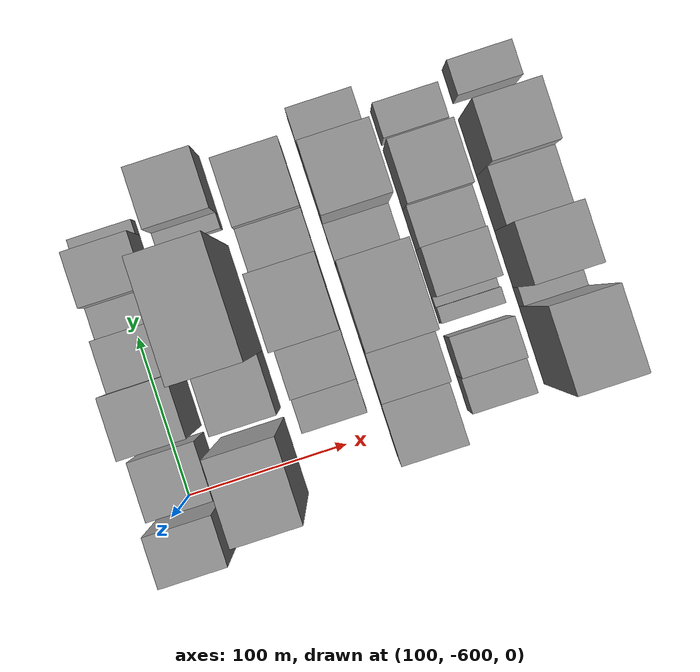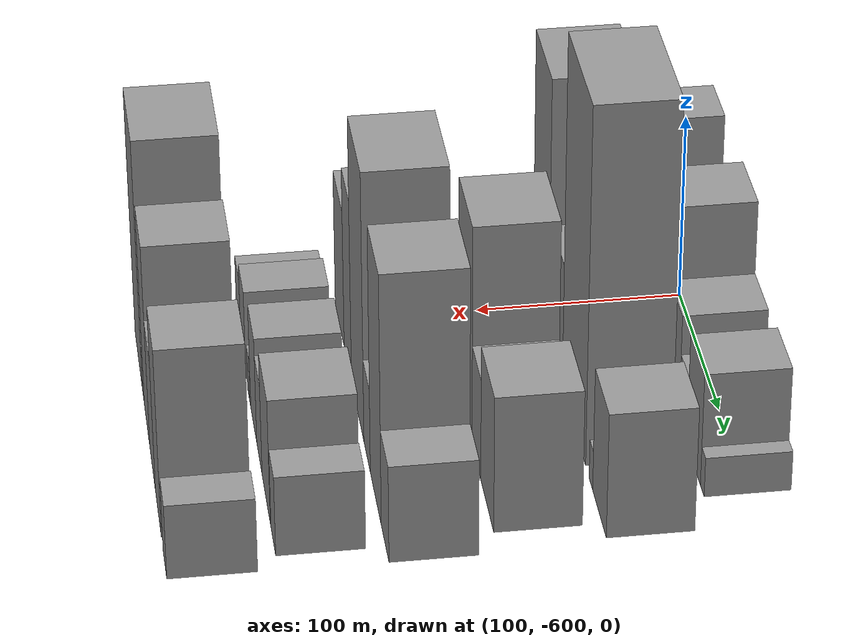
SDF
<sdf version="1.6">
 <world name="default">
  <model name="building_7">
   <static>1</static>
   <pose>100.0000 -620.6411 0 0.000000 0.000000 0.000000</pose>
   <link name="link">
    <pose>0 0 48.00 0 0 0</pose>
    <collision name="collision"><geometry><box><size>40.0000 29.7763 96.0000</size></box></geometry></collision>
    <visual name="visual">
     <cast_shadows>0</cast_shadows>
     <geometry><box><size>40.0000 29.7763 96.0000</size></box></geometry>
     <material>
      <script>
       <uri>model://grey_wall/materials/scripts</uri>
       <uri>model://grey_wall/materials/textures</uri>
       <name>vrc/grey_wall</name>
      </script>
     </material>
    </visual>
   </link>
  </model>
  <model name="building_8">
   <static>1</static>
   <pose>100.0000 -583.9597 0 0.000000 0.000000 0.000000</pose>
   <link name="link">
    <pose>0 0 33.00 0 0 0</pose>
    <collision name="collision"><geometry><box><size>40.0000 35.5866 66.0000</size></box></geometry></collision>
    <visual name="visual">
     <cast_shadows>0</cast_shadows>
     <geometry><box><size>40.0000 35.5866 66.0000</size></box></geometry>
     <material>
      <script>
       <uri>model://grey_wall/materials/scripts</uri>
       <uri>model://grey_wall/materials/textures</uri>
       <name>vrc/grey_wall</name>
      </script>
     </material>
    </visual>
   </link>
  </model>
  <model name="building_9">
   <static>1</static>
   <pose>100.0000 -543.9890 0 0.000000 0.000000 0.000000</pose>
   <link name="link">
    <pose>0 0 48.00 0 0 0</pose>
    <collision name="collision"><geometry><box><size>40.0000 36.3549 96.0000</size></box></geometry></collision>
    <visual name="visual">
     <cast_shadows>0</cast_shadows>
     <geometry><box><size>40.0000 36.3549 96.0000</size></box></geometry>
     <material>
      <script>
       <uri>model://grey_wall/materials/scripts</uri>
       <uri>model://grey_wall/materials/textures</uri>
       <name>vrc/grey_wall</name>
      </script>
     </material>
    </visual>
   </link>
  </model>
  <model name="building_10">
   <static>1</static>
   <pose>100.0000 -510.0783 0 0.000000 0.000000 0.000000</pose>
   <link name="link">
    <pose>0 0 28.50 0 0 0</pose>
    <collision name="collision"><geometry><box><size>40.0000 31.4664 57.0000</size></box></geometry></collision>
    <visual name="visual">
     <cast_shadows>0</cast_shadows>
     <geometry><box><size>40.0000 31.4664 57.0000</size></box></geometry>
     <material>
      <script>
       <uri>model://grey_wall/materials/scripts</uri>
       <uri>model://grey_wall/materials/textures</uri>
       <name>vrc/grey_wall</name>
      </script>
     </material>
    </visual>
   </link>
  </model>
  <model name="building_11">
   <static>1</static>
   <pose>100.0000 -484.4417 0 0.000000 0.000000 0.000000</pose>
   <link name="link">
    <pose>0 0 18.00 0 0 0</pose>
    <collision name="collision"><geometry><box><size>40.0000 19.8068 36.0000</size></box></geometry></collision>
    <visual name="visual">
     <cast_shadows>0</cast_shadows>
     <geometry><box><size>40.0000 19.8068 36.0000</size></box></geometry>
     <material>
      <script>
       <uri>model://grey_wall/materials/scripts</uri>
       <uri>model://grey_wall/materials/textures</uri>
       <name>vrc/grey_wall</name>
      </script>
     </material>
    </visual>
   </link>
  </model>
  <model name="building_12">
   <static>1</static>
   <pose>100.0000 -457.7605 0 0.000000 0.000000 0.000000</pose>
   <link name="link">
    <pose>0 0 30.00 0 0 0</pose>
    <collision name="collision"><geometry><box><size>40.0000 33.5557 60.0000</size></box></geometry></collision>
    <visual name="visual">
     <cast_shadows>0</cast_shadows>
     <geometry><box><size>40.0000 33.5557 60.0000</size></box></geometry>
     <material>
      <script>
       <uri>model://grey_wall/materials/scripts</uri>
       <uri>model://grey_wall/materials/textures</uri>
       <name>vrc/grey_wall</name>
      </script>
     </material>
    </visual>
   </link>
  </model>
  <model name="building_13">
   <static>1</static>
   <pose>100.0000 -436.4602 0 0.000000 0.000000 0.000000</pose>
   <link name="link">
    <pose>0 0 10.50 0 0 0</pose>
    <collision name="collision"><geometry><box><size>40.0000 9.0448 21.0000</size></box></geometry></collision>
    <visual name="visual">
     <cast_shadows>0</cast_shadows>
     <geometry><box><size>40.0000 9.0448 21.0000</size></box></geometry>
     <material>
      <script>
       <uri>model://grey_wall/materials/scripts</uri>
       <uri>model://grey_wall/materials/textures</uri>
       <name>vrc/grey_wall</name>
      </script>
     </material>
    </visual>
   </link>
  </model>
  <model name="building_52">
   <static>1</static>
   <pose>149.0000 -596.8694 0 0.000000 0.000000 0.000000</pose>
   <link name="link">
    <pose>0 0 70.50 0 0 0</pose>
    <collision name="collision"><geometry><box><size>40.0000 48.4864 141.0000</size></box></geometry></collision>
    <visual name="visual">
     <cast_shadows>0</cast_shadows>
     <geometry><box><size>40.0000 48.4864 141.0000</size></box></geometry>
     <material>
      <script>
       <uri>model://grey_wall/materials/scripts</uri>
       <uri>model://grey_wall/materials/textures</uri>
       <name>vrc/grey_wall</name>
      </script>
     </material>
    </visual>
   </link>
  </model>
  <model name="building_53">
   <static>1</static>
   <pose>149.0000 -548.5624 0 0.000000 0.000000 0.000000</pose>
   <link name="link">
    <pose>0 0 33.00 0 0 0</pose>
    <collision name="collision"><geometry><box><size>40.0000 36.1278 66.0000</size></box></geometry></collision>
    <visual name="visual">
     <cast_shadows>0</cast_shadows>
     <geometry><box><size>40.0000 36.1278 66.0000</size></box></geometry>
     <material>
      <script>
       <uri>model://grey_wall/materials/scripts</uri>
       <uri>model://grey_wall/materials/textures</uri>
       <name>vrc/grey_wall</name>
      </script>
     </material>
    </visual>
   </link>
  </model>
  <model name="building_54">
   <static>1</static>
   <pose>149.0000 -497.0256 0 0.000000 0.000000 0.000000</pose>
   <link name="link">
    <pose>0 0 94.50 0 0 0</pose>
    <collision name="collision"><geometry><box><size>40.0000 66.9458 189.0000</size></box></geometry></collision>
    <visual name="visual">
     <cast_shadows>0</cast_shadows>
     <geometry><box><size>40.0000 66.9458 189.0000</size></box></geometry>
     <material>
      <script>
       <uri>model://grey_wall/materials/scripts</uri>
       <uri>model://grey_wall/materials/textures</uri>
       <name>vrc/grey_wall</name>
      </script>
     </material>
    </visual>
   </link>
  </model>
  <model name="building_55">
   <static>1</static>
   <pose>149.0000 -448.6384 0 0.000000 0.000000 0.000000</pose>
   <link name="link">
    <pose>0 0 10.50 0 0 0</pose>
    <collision name="collision"><geometry><box><size>40.0000 9.8285 21.0000</size></box></geometry></collision>
    <visual name="visual">
     <cast_shadows>0</cast_shadows>
     <geometry><box><size>40.0000 9.8285 21.0000</size></box></geometry>
     <material>
      <script>
       <uri>model://grey_wall/materials/scripts</uri>
       <uri>model://grey_wall/materials/textures</uri>
       <name>vrc/grey_wall</name>
      </script>
     </material>
    </visual>
   </link>
  </model>
  <model name="building_56">
   <static>1</static>
   <pose>149.0000 -425.2524 0 0.000000 0.000000 0.000000</pose>
   <link name="link">
    <pose>0 0 33.00 0 0 0</pose>
    <collision name="collision"><geometry><box><size>40.0000 36.9436 66.0000</size></box></geometry></collision>
    <visual name="visual">
     <cast_shadows>0</cast_shadows>
     <geometry><box><size>40.0000 36.9436 66.0000</size></box></geometry>
     <material>
      <script>
       <uri>model://grey_wall/materials/scripts</uri>
       <uri>model://grey_wall/materials/textures</uri>
       <name>vrc/grey_wall</name>
      </script>
     </material>
    </visual>
   </link>
  </model>
  <model name="building_103">
   <static>1</static>
   <pose>198.0000 -572.4885 0 0.000000 0.000000 0.000000</pose>
   <link name="link">
    <pose>0 0 18.00 0 0 0</pose>
    <collision name="collision"><geometry><box><size>40.0000 21.3300 36.0000</size></box></geometry></collision>
    <visual name="visual">
     <cast_shadows>0</cast_shadows>
     <geometry><box><size>40.0000 21.3300 36.0000</size></box></geometry>
     <material>
      <script>
       <uri>model://grey_wall/materials/scripts</uri>
       <uri>model://grey_wall/materials/textures</uri>
       <name>vrc/grey_wall</name>
      </script>
     </material>
    </visual>
   </link>
  </model>
  <model name="building_104">
   <static>1</static>
   <pose>198.0000 -546.5260 0 0.000000 0.000000 0.000000</pose>
   <link name="link">
    <pose>0 0 25.50 0 0 0</pose>
    <collision name="collision"><geometry><box><size>40.0000 30.5950 51.0000</size></box></geometry></collision>
    <visual name="visual">
     <cast_shadows>0</cast_shadows>
     <geometry><box><size>40.0000 30.5950 51.0000</size></box></geometry>
     <material>
      <script>
       <uri>model://grey_wall/materials/scripts</uri>
       <uri>model://grey_wall/materials/textures</uri>
       <name>vrc/grey_wall</name>
      </script>
     </material>
    </visual>
   </link>
  </model>
  <model name="building_105">
   <static>1</static>
   <pose>198.0000 -509.2257 0 0.000000 0.000000 0.000000</pose>
   <link name="link">
    <pose>0 0 58.50 0 0 0</pose>
    <collision name="collision"><geometry><box><size>40.0000 44.0056 117.0000</size></box></geometry></collision>
    <visual name="visual">
     <cast_shadows>0</cast_shadows>
     <geometry><box><size>40.0000 44.0056 117.0000</size></box></geometry>
     <material>
      <script>
       <uri>model://grey_wall/materials/scripts</uri>
       <uri>model://grey_wall/materials/textures</uri>
       <name>vrc/grey_wall</name>
      </script>
     </material>
    </visual>
   </link>
  </model>
  <model name="building_106">
   <static>1</static>
   <pose>198.0000 -472.9932 0 0.000000 0.000000 0.000000</pose>
   <link name="link">
    <pose>0 0 27.00 0 0 0</pose>
    <collision name="collision"><geometry><box><size>40.0000 28.4594 54.0000</size></box></geometry></collision>
    <visual name="visual">
     <cast_shadows>0</cast_shadows>
     <geometry><box><size>40.0000 28.4594 54.0000</size></box></geometry>
     <material>
      <script>
       <uri>model://grey_wall/materials/scripts</uri>
       <uri>model://grey_wall/materials/textures</uri>
       <name>vrc/grey_wall</name>
      </script>
     </material>
    </visual>
   </link>
  </model>
  <model name="building_107">
   <static>1</static>
   <pose>198.0000 -438.2118 0 0.000000 0.000000 0.000000</pose>
   <link name="link">
    <pose>0 0 36.00 0 0 0</pose>
    <collision name="collision"><geometry><box><size>40.0000 41.1033 72.0000</size></box></geometry></collision>
    <visual name="visual">
     <cast_shadows>0</cast_shadows>
     <geometry><box><size>40.0000 41.1033 72.0000</size></box></geometry>
     <material>
      <script>
       <uri>model://grey_wall/materials/scripts</uri>
       <uri>model://grey_wall/materials/textures</uri>
       <name>vrc/grey_wall</name>
      </script>
     </material>
    </visual>
   </link>
  </model>
  <model name="building_155">
   <static>1</static>
   <pose>247.0000 -596.1404 0 0.000000 0.000000 0.000000</pose>
   <link name="link">
    <pose>0 0 37.50 0 0 0</pose>
    <collision name="collision"><geometry><box><size>40.0000 38.1607 75.0000</size></box></geometry></collision>
    <visual name="visual">
     <cast_shadows>0</cast_shadows>
     <geometry><box><size>40.0000 38.1607 75.0000</size></box></geometry>
     <material>
      <script>
       <uri>model://grey_wall/materials/scripts</uri>
       <uri>model://grey_wall/materials/textures</uri>
       <name>vrc/grey_wall</name>
      </script>
     </material>
    </visual>
   </link>
  </model>
  <model name="building_156">
   <static>1</static>
   <pose>247.0000 -561.8321 0 0.000000 0.000000 0.000000</pose>
   <link name="link">
    <pose>0 0 49.50 0 0 0</pose>
    <collision name="collision"><geometry><box><size>40.0000 30.4558 99.0000</size></box></geometry></collision>
    <visual name="visual">
     <cast_shadows>0</cast_shadows>
     <geometry><box><size>40.0000 30.4558 99.0000</size></box></geometry>
     <material>
      <script>
       <uri>model://grey_wall/materials/scripts</uri>
       <uri>model://grey_wall/materials/textures</uri>
       <name>vrc/grey_wall</name>
      </script>
     </material>
    </visual>
   </link>
  </model>
  <model name="building_157">
   <static>1</static>
   <pose>247.0000 -521.4308 0 0.000000 0.000000 0.000000</pose>
   <link name="link">
    <pose>0 0 72.00 0 0 0</pose>
    <collision name="collision"><geometry><box><size>40.0000 50.3468 144.0000</size></box></geometry></collision>
    <visual name="visual">
     <cast_shadows>0</cast_shadows>
     <geometry><box><size>40.0000 50.3468 144.0000</size></box></geometry>
     <material>
      <script>
       <uri>model://grey_wall/materials/scripts</uri>
       <uri>model://grey_wall/materials/textures</uri>
       <name>vrc/grey_wall</name>
      </script>
     </material>
    </visual>
   </link>
  </model>
  <model name="building_158">
   <static>1</static>
   <pose>247.0000 -483.7809 0 0.000000 0.000000 0.000000</pose>
   <link name="link">
    <pose>0 0 22.50 0 0 0</pose>
    <collision name="collision"><geometry><box><size>40.0000 24.9532 45.0000</size></box></geometry></collision>
    <visual name="visual">
     <cast_shadows>0</cast_shadows>
     <geometry><box><size>40.0000 24.9532 45.0000</size></box></geometry>
     <material>
      <script>
       <uri>model://grey_wall/materials/scripts</uri>
       <uri>model://grey_wall/materials/textures</uri>
       <name>vrc/grey_wall</name>
      </script>
     </material>
    </visual>
   </link>
  </model>
  <model name="building_159">
   <static>1</static>
   <pose>247.0000 -450.6455 0 0.000000 0.000000 0.000000</pose>
   <link name="link">
    <pose>0 0 66.00 0 0 0</pose>
    <collision name="collision"><geometry><box><size>40.0000 41.3175 132.0000</size></box></geometry></collision>
    <visual name="visual">
     <cast_shadows>0</cast_shadows>
     <geometry><box><size>40.0000 41.3175 132.0000</size></box></geometry>
     <material>
      <script>
       <uri>model://grey_wall/materials/scripts</uri>
       <uri>model://grey_wall/materials/textures</uri>
       <name>vrc/grey_wall</name>
      </script>
     </material>
    </visual>
   </link>
  </model>
  <model name="building_160">
   <static>1</static>
   <pose>247.0000 -415.8034 0 0.000000 0.000000 0.000000</pose>
   <link name="link">
    <pose>0 0 25.50 0 0 0</pose>
    <collision name="collision"><geometry><box><size>40.0000 28.3667 51.0000</size></box></geometry></collision>
    <visual name="visual">
     <cast_shadows>0</cast_shadows>
     <geometry><box><size>40.0000 28.3667 51.0000</size></box></geometry>
     <material>
      <script>
       <uri>model://grey_wall/materials/scripts</uri>
       <uri>model://grey_wall/materials/textures</uri>
       <name>vrc/grey_wall</name>
      </script>
     </material>
    </visual>
   </link>
  </model>
  <model name="building_200">
   <static>1</static>
   <pose>296.0000 -591.9355 0 0.000000 0.000000 0.000000</pose>
   <link name="link">
    <pose>0 0 19.50 0 0 0</pose>
    <collision name="collision"><geometry><box><size>40.0000 22.0180 39.0000</size></box></geometry></collision>
    <visual name="visual">
     <cast_shadows>0</cast_shadows>
     <geometry><box><size>40.0000 22.0180 39.0000</size></box></geometry>
     <material>
      <script>
       <uri>model://grey_wall/materials/scripts</uri>
       <uri>model://grey_wall/materials/textures</uri>
       <name>vrc/grey_wall</name>
      </script>
     </material>
    </visual>
   </link>
  </model>
  <model name="building_201">
   <static>1</static>
   <pose>296.0000 -568.3559 0 0.000000 0.000000 0.000000</pose>
   <link name="link">
    <pose>0 0 24.00 0 0 0</pose>
    <collision name="collision"><geometry><box><size>40.0000 25.1412 48.0000</size></box></geometry></collision>
    <visual name="visual">
     <cast_shadows>0</cast_shadows>
     <geometry><box><size>40.0000 25.1412 48.0000</size></box></geometry>
     <material>
      <script>
       <uri>model://grey_wall/materials/scripts</uri>
       <uri>model://grey_wall/materials/textures</uri>
       <name>vrc/grey_wall</name>
      </script>
     </material>
    </visual>
   </link>
  </model>
  <model name="building_202">
   <static>1</static>
   <pose>296.0000 -542.7896 0 0.000000 0.000000 0.000000</pose>
   <link name="link">
    <pose>0 0 12.00 0 0 0</pose>
    <collision name="collision"><geometry><box><size>40.0000 9.9915 24.0000</size></box></geometry></collision>
    <visual name="visual">
     <cast_shadows>0</cast_shadows>
     <geometry><box><size>40.0000 9.9915 24.0000</size></box></geometry>
     <material>
      <script>
       <uri>model://grey_wall/materials/scripts</uri>
       <uri>model://grey_wall/materials/textures</uri>
       <name>vrc/grey_wall</name>
      </script>
     </material>
    </visual>
   </link>
  </model>
  <model name="building_203">
   <static>1</static>
   <pose>296.0000 -534.6076 0 0.000000 0.000000 0.000000</pose>
   <link name="link">
    <pose>0 0 7.50 0 0 0</pose>
    <collision name="collision"><geometry><box><size>40.0000 6.3723 15.0000</size></box></geometry></collision>
    <visual name="visual">
     <cast_shadows>0</cast_shadows>
     <geometry><box><size>40.0000 6.3723 15.0000</size></box></geometry>
     <material>
      <script>
       <uri>model://grey_wall/materials/scripts</uri>
       <uri>model://grey_wall/materials/textures</uri>
       <name>vrc/grey_wall</name>
      </script>
     </material>
    </visual>
   </link>
  </model>
  <model name="building_204">
   <static>1</static>
   <pose>296.0000 -516.5958 0 0.000000 0.000000 0.000000</pose>
   <link name="link">
    <pose>0 0 28.50 0 0 0</pose>
    <collision name="collision"><geometry><box><size>40.0000 29.6514 57.0000</size></box></geometry></collision>
    <visual name="visual">
     <cast_shadows>0</cast_shadows>
     <geometry><box><size>40.0000 29.6514 57.0000</size></box></geometry>
     <material>
      <script>
       <uri>model://grey_wall/materials/scripts</uri>
       <uri>model://grey_wall/materials/textures</uri>
       <name>vrc/grey_wall</name>
      </script>
     </material>
    </visual>
   </link>
  </model>
  <model name="building_205">
   <static>1</static>
   <pose>296.0000 -488.9915 0 0.000000 0.000000 0.000000</pose>
   <link name="link">
    <pose>0 0 24.00 0 0 0</pose>
    <collision name="collision"><geometry><box><size>40.0000 25.5571 48.0000</size></box></geometry></collision>
    <visual name="visual">
     <cast_shadows>0</cast_shadows>
     <geometry><box><size>40.0000 25.5571 48.0000</size></box></geometry>
     <material>
      <script>
       <uri>model://grey_wall/materials/scripts</uri>
       <uri>model://grey_wall/materials/textures</uri>
       <name>vrc/grey_wall</name>
      </script>
     </material>
    </visual>
   </link>
  </model>
  <model name="building_206">
   <static>1</static>
   <pose>296.0000 -456.9990 0 0.000000 0.000000 0.000000</pose>
   <link name="link">
    <pose>0 0 33.00 0 0 0</pose>
    <collision name="collision"><geometry><box><size>40.0000 38.4278 66.0000</size></box></geometry></collision>
    <visual name="visual">
     <cast_shadows>0</cast_shadows>
     <geometry><box><size>40.0000 38.4278 66.0000</size></box></geometry>
     <material>
      <script>
       <uri>model://grey_wall/materials/scripts</uri>
       <uri>model://grey_wall/materials/textures</uri>
       <name>vrc/grey_wall</name>
      </script>
     </material>
    </visual>
   </link>
  </model>
  <model name="building_207">
   <static>1</static>
   <pose>296.0000 -424.0173 0 0.000000 0.000000 0.000000</pose>
   <link name="link">
    <pose>0 0 21.00 0 0 0</pose>
    <collision name="collision"><geometry><box><size>40.0000 21.5356 42.0000</size></box></geometry></collision>
    <visual name="visual">
     <cast_shadows>0</cast_shadows>
     <geometry><box><size>40.0000 21.5356 42.0000</size></box></geometry>
     <material>
      <script>
       <uri>model://grey_wall/materials/scripts</uri>
       <uri>model://grey_wall/materials/textures</uri>
       <name>vrc/grey_wall</name>
      </script>
     </material>
    </visual>
   </link>
  </model>
  <model name="building_254">
   <static>1</static>
   <pose>345.0000 -577.6453 0 0.000000 0.000000 0.000000</pose>
   <link name="link">
    <pose>0 0 67.50 0 0 0</pose>
    <collision name="collision"><geometry><box><size>40.0000 49.4900 135.0000</size></box></geometry></collision>
    <visual name="visual">
     <cast_shadows>0</cast_shadows>
     <geometry><box><size>40.0000 49.4900 135.0000</size></box></geometry>
     <material>
      <script>
       <uri>model://grey_wall/materials/scripts</uri>
       <uri>model://grey_wall/materials/textures</uri>
       <name>vrc/grey_wall</name>
      </script>
     </material>
    </visual>
   </link>
  </model>
  <model name="building_255">
   <static>1</static>
   <pose>345.0000 -546.9639 0 0.000000 0.000000 0.000000</pose>
   <link name="link">
    <pose>0 0 13.50 0 0 0</pose>
    <collision name="collision"><geometry><box><size>40.0000 11.8729 27.0000</size></box></geometry></collision>
    <visual name="visual">
     <cast_shadows>0</cast_shadows>
     <geometry><box><size>40.0000 11.8729 27.0000</size></box></geometry>
     <material>
      <script>
       <uri>model://grey_wall/materials/scripts</uri>
       <uri>model://grey_wall/materials/textures</uri>
       <name>vrc/grey_wall</name>
      </script>
     </material>
    </visual>
   </link>
  </model>
  <model name="building_256">
   <static>1</static>
   <pose>345.0000 -523.0775 0 0.000000 0.000000 0.000000</pose>
   <link name="link">
    <pose>0 0 54.00 0 0 0</pose>
    <collision name="collision"><geometry><box><size>40.0000 35.8998 108.0000</size></box></geometry></collision>
    <visual name="visual">
     <cast_shadows>0</cast_shadows>
     <geometry><box><size>40.0000 35.8998 108.0000</size></box></geometry>
     <material>
      <script>
       <uri>model://grey_wall/materials/scripts</uri>
       <uri>model://grey_wall/materials/textures</uri>
       <name>vrc/grey_wall</name>
      </script>
     </material>
    </visual>
   </link>
  </model>
  <model name="building_257">
   <static>1</static>
   <pose>345.0000 -487.6703 0 0.000000 0.000000 0.000000</pose>
   <link name="link">
    <pose>0 0 34.50 0 0 0</pose>
    <collision name="collision"><geometry><box><size>40.0000 34.9146 69.0000</size></box></geometry></collision>
    <visual name="visual">
     <cast_shadows>0</cast_shadows>
     <geometry><box><size>40.0000 34.9146 69.0000</size></box></geometry>
     <material>
      <script>
       <uri>model://grey_wall/materials/scripts</uri>
       <uri>model://grey_wall/materials/textures</uri>
       <name>vrc/grey_wall</name>
      </script>
     </material>
    </visual>
   </link>
  </model>
  <model name="building_258">
   <static>1</static>
   <pose>345.0000 -452.2076 0 0.000000 0.000000 0.000000</pose>
   <link name="link">
    <pose>0 0 49.50 0 0 0</pose>
    <collision name="collision"><geometry><box><size>40.0000 36.0108 99.0000</size></box></geometry></collision>
    <visual name="visual">
     <cast_shadows>0</cast_shadows>
     <geometry><box><size>40.0000 36.0108 99.0000</size></box></geometry>
     <material>
      <script>
       <uri>model://grey_wall/materials/scripts</uri>
       <uri>model://grey_wall/materials/textures</uri>
       <name>vrc/grey_wall</name>
      </script>
     </material>
    </visual>
   </link>
  </model>
  <model name="building_259">
   <static>1</static>
   <pose>345.0000 -413.4041 0 0.000000 0.000000 0.000000</pose>
   <link name="link">
    <pose>0 0 19.50 0 0 0</pose>
    <collision name="collision"><geometry><box><size>40.0000 21.5962 39.0000</size></box></geometry></collision>
    <visual name="visual">
     <cast_shadows>0</cast_shadows>
     <geometry><box><size>40.0000 21.5962 39.0000</size></box></geometry>
     <material>
      <script>
       <uri>model://grey_wall/materials/scripts</uri>
       <uri>model://grey_wall/materials/textures</uri>
       <name>vrc/grey_wall</name>
      </script>
     </material>
    </visual>
   </link>
  </model>
 </world>
</sdf>
